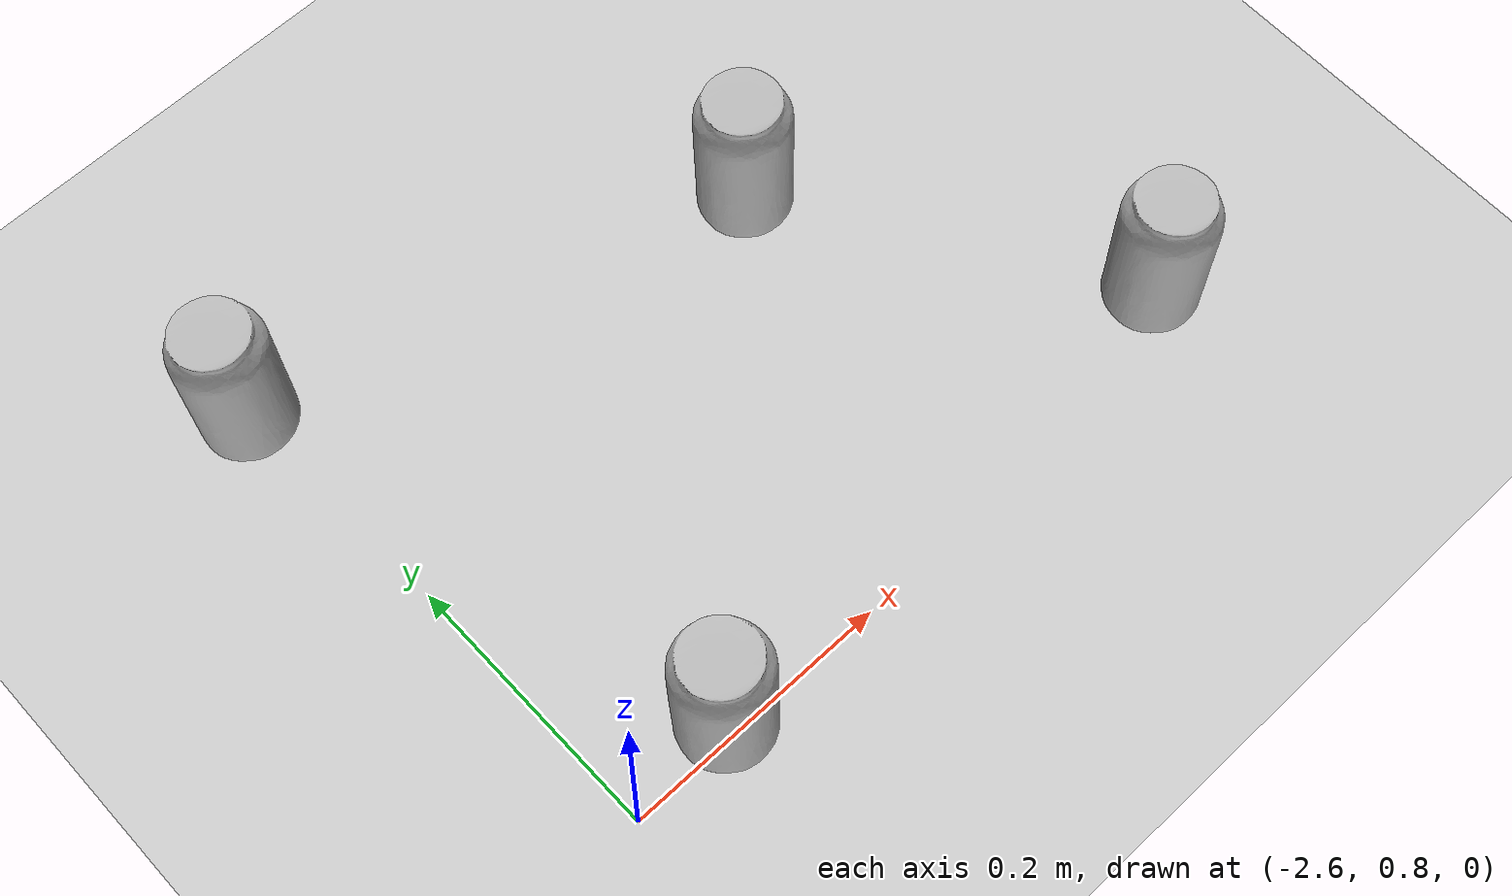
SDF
<sdf version="1.7">
 <world name="default">
  <light name="sun" type="directional">
   <pose>0 0 10 0 -0 0</pose>
   <diffuse>0.8 0.8 0.8 1</diffuse>
   <specular>0.2 0.2 0.2 1</specular>
   <attenuation>
    <range>1000</range>
    <constant>0.9</constant>
    <linear>0.01</linear>
    <quadratic>0.001</quadratic>
   </attenuation>
   <direction>-0.5 0.1 -0.9</direction>
   <spot><inner_angle>0</inner_angle><outer_angle>0</outer_angle><falloff>0</falloff></spot>
  </light>
  <model name="ground_plane">
   <static>1</static>
   <link name="link">
    <collision name="collision">
     <geometry><plane><normal>0 0 1</normal><size>100 100</size></plane></geometry>
     <surface>
      <contact><collide_bitmask>65535</collide_bitmask></contact>
      <friction><ode><mu>100</mu><mu2>50</mu2></ode></friction>
     </surface>
    </collision>
    <visual name="visual">
     <cast_shadows>0</cast_shadows>
     <geometry><plane><normal>0 0 1</normal><size>100 100</size></plane></geometry>
     <material>
      <script><uri>file://media/materials/scripts/gazebo.material</uri><name>Gazebo/Grey</name></script>
     </material>
    </visual>
   </link>
  </model>
  <physics type="ode">
   <real_time_update_rate>1000</real_time_update_rate>
   <max_step_size>0.001</max_step_size>
   <real_time_factor>1</real_time_factor>
   <ode>
    <solver>
     <type>quick</type>
     <iters>150</iters>
     <precon_iters>0</precon_iters>
     <sor>1.4</sor>
     <use_dynamic_moi_rescaling>1</use_dynamic_moi_rescaling>
    </solver>
    <constraints>
     <cfm>1e-05</cfm>
     <erp>0.2</erp>
     <contact_max_correcting_vel>2000</contact_max_correcting_vel>
     <contact_surface_layer>0.01</contact_surface_layer>
    </constraints>
   </ode>
  </physics>
  <scene><ambient>0.4 0.4 0.4 1</ambient><background>0.7 0.7 0.7 1</background><shadows>1</shadows></scene>
  <gravity>0 0 -9.8</gravity>
  <magnetic_field>6e-06 2.3e-05 -4.2e-05</magnetic_field>
  <atmosphere type="adiabatic"/>
  <spherical_coordinates>
   <surface_model>EARTH_WGS84</surface_model>
   <latitude_deg>0</latitude_deg>
   <longitude_deg>0</longitude_deg>
   <elevation>0</elevation>
   <heading_deg>0</heading_deg>
  </spherical_coordinates>
  <model name="coke_can">
   <link name="link">
    <inertial>
     <pose>0 0 0.06 0 -0 0</pose>
     <mass>0.39</mass>
     <inertia>
      <ixx>0.00055575</ixx>
      <ixy>0</ixy>
      <ixz>0</ixz>
      <iyy>0.00055575</iyy>
      <iyz>0</iyz>
      <izz>0.0001755</izz>
     </inertia>
    </inertial>
    <collision name="collision">
     <pose>0.003937 0.004724 -0.18 0 -0 0</pose>
     <geometry><mesh><uri>model://coke_can/meshes/coke_can.dae</uri></mesh></geometry>
     <surface>
      <friction><ode><mu>1</mu><mu2>1</mu2></ode></friction>
      <contact><ode><kp>1e+07</kp><kd>1</kd><min_depth>0.001</min_depth><max_vel>0.1</max_vel></ode></contact>
     </surface>
    </collision>
    <visual name="visual">
     <pose>0.003937 0.004724 -0.18 0 -0 0</pose>
     <geometry><mesh><uri>model://coke_can/meshes/coke_can.dae</uri></mesh></geometry>
    </visual>
   </link>
   <pose>-2.60656 1.17307 -0.002869 -0.061527 -0.001816 -0.000366</pose>
  </model>
  <model name="coke_can_0">
   <link name="link">
    <inertial>
     <pose>0 0 0.06 0 -0 0</pose>
     <mass>0.39</mass>
     <inertia>
      <ixx>0.00055575</ixx>
      <ixy>0</ixy>
      <ixz>0</ixz>
      <iyy>0.00055575</iyy>
      <iyz>0</iyz>
      <izz>0.0001755</izz>
     </inertia>
    </inertial>
    <collision name="collision">
     <pose>0.003937 0.004724 -0.18 0 -0 0</pose>
     <geometry><mesh><uri>model://coke_can/meshes/coke_can.dae</uri></mesh></geometry>
     <surface>
      <friction><ode><mu>1</mu><mu2>1</mu2></ode></friction>
      <contact><ode><kp>1e+07</kp><kd>1</kd><min_depth>0.001</min_depth><max_vel>0.1</max_vel></ode></contact>
     </surface>
    </collision>
    <visual name="visual">
     <pose>0.003937 0.004724 -0.18 0 -0 0</pose>
     <geometry><mesh><uri>model://coke_can/meshes/coke_can.dae</uri></mesh></geometry>
    </visual>
   </link>
   <pose>-2.51837 0.807681 -0.002805 -0.063319 0.001564 -0.000367</pose>
  </model>
  <model name="coke_can_1">
   <link name="link">
    <inertial>
     <pose>0 0 0.06 0 -0 0</pose>
     <mass>0.39</mass>
     <inertia>
      <ixx>0.00055575</ixx>
      <ixy>0</ixy>
      <ixz>0</ixz>
      <iyy>0.00055575</iyy>
      <iyz>0</iyz>
      <izz>0.0001755</izz>
     </inertia>
    </inertial>
    <collision name="collision">
     <pose>0.003937 0.004724 -0.18 0 -0 0</pose>
     <geometry><mesh><uri>model://coke_can/meshes/coke_can.dae</uri></mesh></geometry>
     <surface>
      <friction><ode><mu>1</mu><mu2>1</mu2></ode></friction>
      <contact><ode><kp>1e+07</kp><kd>1</kd><min_depth>0.001</min_depth><max_vel>0.1</max_vel></ode></contact>
     </surface>
    </collision>
    <visual name="visual">
     <pose>0.003937 0.004724 -0.18 0 -0 0</pose>
     <geometry><mesh><uri>model://coke_can/meshes/coke_can.dae</uri></mesh></geometry>
    </visual>
   </link>
   <pose>-2.25379 1.07229 -0.002743 -0.056989 0.006442 -0.000509</pose>
  </model>
  <model name="coke_can_2">
   <link name="link">
    <inertial>
     <pose>0 0 0.06 0 -0 0</pose>
     <mass>0.39</mass>
     <inertia>
      <ixx>0.00055575</ixx>
      <ixy>0</ixy>
      <ixz>0</ixz>
      <iyy>0.00055575</iyy>
      <iyz>0</iyz>
      <izz>0.0001755</izz>
     </inertia>
    </inertial>
    <collision name="collision">
     <pose>0.003937 0.004724 -0.18 0 -0 0</pose>
     <geometry><mesh><uri>model://coke_can/meshes/coke_can.dae</uri></mesh></geometry>
     <surface>
      <friction><ode><mu>1</mu><mu2>1</mu2></ode></friction>
      <contact><ode><kp>1e+07</kp><kd>1</kd><min_depth>0.001</min_depth><max_vel>0.1</max_vel></ode></contact>
     </surface>
    </collision>
    <visual name="visual">
     <pose>0.003937 0.004724 -0.18 0 -0 0</pose>
     <geometry><mesh><uri>model://coke_can/meshes/coke_can.dae</uri></mesh></geometry>
    </visual>
   </link>
   <pose>-2.10265 0.83347 -0.002678 -0.055282 0.007626 -0.00049</pose>
  </model>
 </world>
</sdf>
